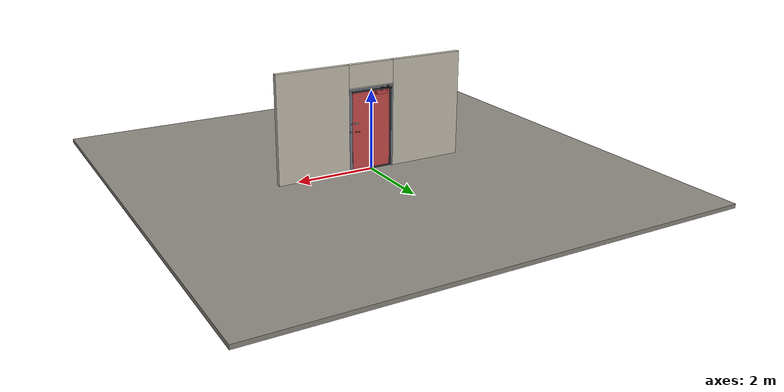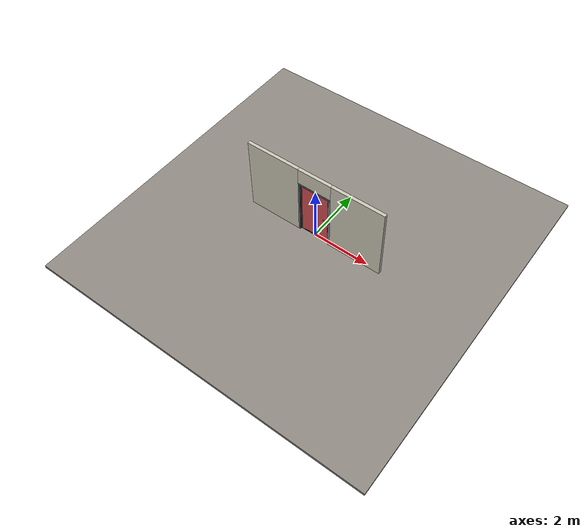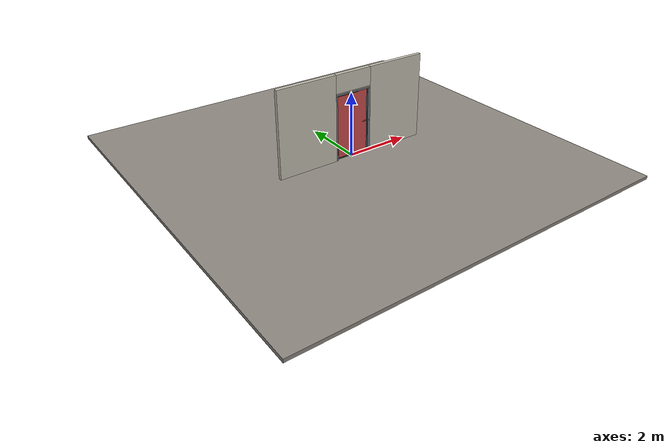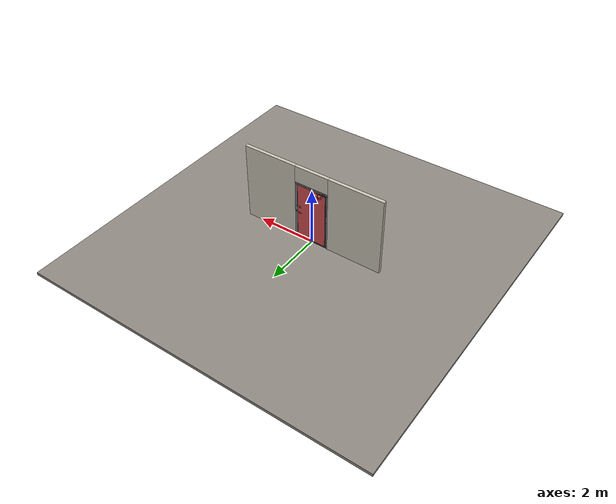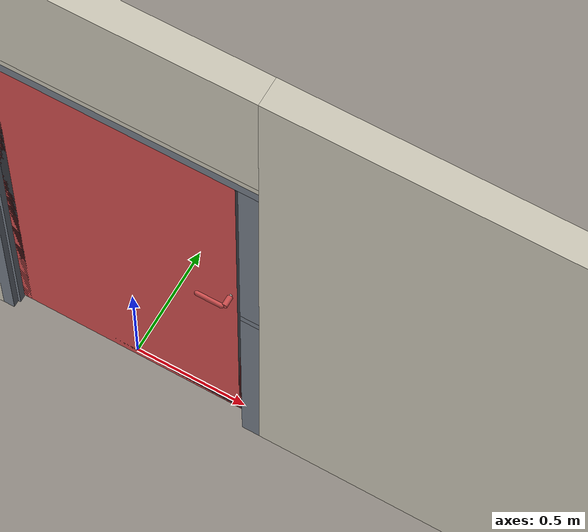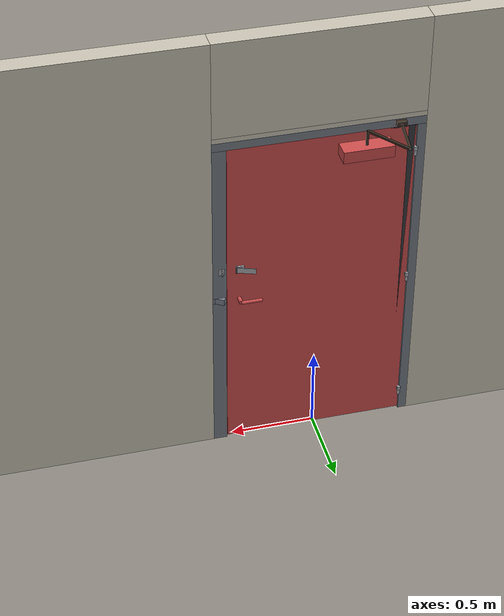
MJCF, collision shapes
<?xml version="1.0" ?>
<mujoco model="db0508_swing_single_full">
  <compiler angle="radian" meshdir="../../hardware" texturedir="../../textures" autolimits="true" inertiafromgeom="false"/>
  <option timestep="0.002" integrator="implicitfast" cone="elliptic" impratio="10" noslip_iterations="3">
    <flag multiccd="enable"/>
  </option>
  <size memory="16M"/>
  <default>
    <geom condim="4" solref="0.005 1" solimp="0.95 0.99 0.001"/>
    <joint solreflimit="0.005 1" solimplimit="0.95 0.99 0.001"/>
    <tendon solreflimit="0.005 1"/>
    <equality solref="0.002 1"/>
  </default>
  <visual>
    <headlight ambient="0.4 0.4 0.4" diffuse="0.7 0.7 0.7" specular="0.2 0.2 0.2"/>
    <quality shadowsize="4096"/>
    <map znear="0.01" zfar="60"/>
  </visual>
  <asset>
    <mesh name="closer_body_fdc4667657" file="closer_body_fdc4667657.obj"/>
    <mesh name="lever_9f02b544cf" file="lever_9f02b544cf.obj"/>
    <mesh name="strap_hinge_78d1bbb966" file="strap_hinge_78d1bbb966.obj"/>
    <material name="mat_floor" rgba="0.55 0.53 0.5 1" specular="0.2" shininess="0.15" reflectance="0"/>
    <material name="mat_wall" rgba="0.78 0.76 0.7 1" specular="0.2" shininess="0.1" reflectance="0"/>
    <material name="mat_leaf" rgba="0.2 0.21 0.23 1" specular="0.23" shininess="0.5" reflectance="0.02"/>
    <material name="mat_mesh_infill" rgba="0.6 0.62 0.64 0.55" specular="0.68" shininess="0.3" reflectance="0.1"/>
    <material name="mat_hinge" rgba="0.65 0.66 0.68 1" specular="0.74" shininess="0.5" reflectance="0.36"/>
    <material name="mat_op_nickel_satin" rgba="0.72 0.7 0.66 1" specular="0.8" shininess="0.65" reflectance="0.4"/>
    <material name="mat_trim" rgba="0.85 0.66 0.3 1" specular="0.8" shininess="0.75" reflectance="0.4"/>
    <material name="mat_bolt" rgba="0.85 0.66 0.3 1" specular="0.8" shininess="0.75" reflectance="0.4"/>
    <material name="mat_op_steel_galvanized" rgba="0.65 0.66 0.68 1" specular="0.74" shininess="0.5" reflectance="0.36"/>
    <material name="mat_padlock" rgba="0.85 0.66 0.3 1" specular="0.8" shininess="0.75" reflectance="0.4"/>
    <material name="mat_frame" rgba="0.45 0.48 0.52 1" specular="0.32" shininess="0.6" reflectance="0.08"/>
    <material name="mat_seal" rgba="0.1 0.1 0.1 1" specular="0.2" shininess="0.1" reflectance="0"/>
    <material name="mat_closer" rgba="0.22 0.17 0.13 1" specular="0.8" shininess="0.6" reflectance="0.4"/>
    <texture name="skybox" type="skybox" builtin="gradient" rgb1="0.6 0.7 0.85" rgb2="0.9 0.92 0.95" width="256" height="256"/>
  </asset>
  <worldbody>
    <light name="sun" pos="1.5 -2.5 4" dir="-0.3 0.5 -0.8" directional="true" diffuse="0.8 0.8 0.8" specular="0.3 0.3 0.3" castshadow="true"/>
    <light name="fill" pos="-1.5 2.5 3" dir="0.3 -0.5 -0.7" directional="true" diffuse="0.35 0.35 0.4" castshadow="false"/>
    <camera name="robot_view" pos="0 -2.570688 1.734312" xyaxes="1 0 0 0 0.26963 0.962964" fovy="52"/>
    <camera name="far_view" pos="0 2.513687 1.734312" xyaxes="-1 0 0 0 -0.26963 0.962964" fovy="52"/>
    <camera name="iso" pos="1.932062 -2.163938 2.141063" xyaxes="0.741536 0.670913 0 -0.242917 0.268487 0.932151" fovy="46"/>
    <camera name="detail_handle" pos="0.543 -0.877 1.32" xyaxes="0.97561 0.219512 0 -0.070934 0.315262 0.94635" fovy="38"/>
    <geom name="floor" type="box" size="6 6 0.05" pos="0 0 -0.05" material="mat_floor" group="0" contype="1" conaffinity="1" friction="0.8 0.005 0.0001" density="2400"/>
    <geom name="wall_left" type="box" size="0.9565 0.0575 1.35" pos="-1.5435 -0.0285 1.35" material="mat_wall" group="0" contype="1" conaffinity="1" friction="0.6 0.005 0.0001" density="800"/>
    <geom name="wall_right" type="box" size="0.9415 0.0575 1.35" pos="1.5585 -0.0285 1.35" material="mat_wall" group="0" contype="1" conaffinity="1" friction="0.6 0.005 0.0001" density="800"/>
    <geom name="wall_header" type="box" size="0.602 0.0575 0.2875" pos="0.015 -0.0285 2.4125" material="mat_wall" group="0" contype="1" conaffinity="1" friction="0.6 0.005 0.0001" density="800"/>
    <geom name="hinge_pintle_0" type="cylinder" size="0.008 0.02" pos="-0.534 0.029 0.133" material="mat_hinge" group="1" contype="0" conaffinity="0" density="7850"/>
    <geom name="hinge_pintle_1" type="cylinder" size="0.008 0.02" pos="-0.534 0.029 0.999" material="mat_hinge" group="1" contype="0" conaffinity="0" density="7850"/>
    <geom name="hinge_pintle_2" type="cylinder" size="0.008 0.02" pos="-0.534 0.029 1.865" material="mat_hinge" group="1" contype="0" conaffinity="0" density="7850"/>
    <geom name="leaf_staple_leg_n" type="box" size="0.003 0.0025 0.013" pos="0.565 0.042 1.2525" quat="0.707107 -0.707107 0 0" material="mat_op_steel_galvanized" group="0" contype="1" conaffinity="1" friction="0.6 0.005 0.0001" density="7800"/>
    <geom name="leaf_staple_leg_p" type="box" size="0.003 0.0025 0.013" pos="0.565 0.042 1.2275" quat="0.707107 -0.707107 0 0" material="mat_op_steel_galvanized" group="0" contype="1" conaffinity="1" friction="0.6 0.005 0.0001" density="7800"/>
    <geom name="leaf_staple_bridge" type="box" size="0.003 0.015 0.0025" pos="0.565 0.0525 1.24" quat="0.707107 -0.707107 0 0" material="mat_op_steel_galvanized" group="0" contype="1" conaffinity="1" friction="0.6 0.005 0.0001" density="7800"/>
    <geom name="leaf_staple_base" type="box" size="0.016 0.021 0.001" pos="0.565 0.03 1.24" quat="0.707107 -0.707107 0 0" material="mat_op_steel_galvanized" group="1" contype="0" conaffinity="0" density="7800"/>
    <geom name="jamb_hinge" type="box" size="0.025 0.0575 1.0225" pos="-0.562 -0.0285 1.0225" material="mat_frame" group="0" contype="1" conaffinity="1" friction="0.6 0.005 0.0001" density="300"/>
    <geom name="strike_1040_wall_n" type="box" size="0.04 0.03825 0.0183" pos="0.577 -0.04775 1.04" material="mat_frame" group="0" contype="1" conaffinity="1" friction="0.6 0.005 0.0001" density="300"/>
    <geom name="strike_1040_wall_p" type="box" size="0.04 0.008 0.0183" pos="0.577 0.0175 1.04" material="mat_frame" group="0" contype="1" conaffinity="1" friction="0.6 0.005 0.0001" density="300"/>
    <geom name="strike_1040_ramp" type="box" size="0.04 0.018028 0.0183" pos="0.580282 0.018312 1.04" quat="0.957092 0 0 -0.289784" material="mat_frame" group="0" contype="1" conaffinity="1" friction="0.12 0.005 0.0001" density="300"/>
    <geom name="strike_1040_back" type="box" size="0.0285 0.0095 0.0183" pos="0.5885 0 1.04" material="mat_frame" group="0" contype="1" conaffinity="1" friction="0.6 0.005 0.0001" density="300"/>
    <geom name="jamb_strike_0" type="box" size="0.04 0.0575 0.51085" pos="0.577 -0.0285 0.51085" material="mat_frame" group="0" contype="1" conaffinity="1" friction="0.6 0.005 0.0001" density="300"/>
    <geom name="jamb_strike_1" type="box" size="0.04 0.0575 0.49335" pos="0.577 -0.0285 1.55165" material="mat_frame" group="0" contype="1" conaffinity="1" friction="0.6 0.005 0.0001" density="300"/>
    <geom name="jamb_head" type="box" size="0.602 0.0575 0.025" pos="0.015 -0.0285 2.07" material="mat_frame" group="0" contype="1" conaffinity="1" friction="0.6 0.005 0.0001" density="300"/>
    <geom name="head_stud" type="box" size="0.602 0.0575 0.015" pos="0.015 -0.0285 2.11" material="mat_wall" group="0" contype="1" conaffinity="1" friction="0.6 0.005 0.0001" density="500"/>
    <geom name="stop_hinge" type="box" size="0.0055 0.016 1.0225" pos="-0.5315 -0.0385 1.0225" material="mat_frame" group="0" contype="1" conaffinity="1" friction="0.6 0.005 0.0001" density="300"/>
    <geom name="stop_strike" type="box" size="0.0055 0.016 1.0225" pos="0.5315 -0.0385 1.0225" material="mat_frame" group="0" contype="1" conaffinity="1" friction="0.6 0.005 0.0001" density="300"/>
    <geom name="stop_head" type="box" size="0.537 0.016 0.0055" pos="0 -0.0385 2.0395" material="mat_frame" group="0" contype="1" conaffinity="1" friction="0.6 0.005 0.0001" density="300"/>
    <geom name="seal_hinge" type="box" size="0.004 0.004 1.0225" pos="-0.534 -0.026 1.0225" material="mat_seal" group="1" contype="0" conaffinity="0" density="1100"/>
    <geom name="seal_strike" type="box" size="0.004 0.004 1.0225" pos="0.534 -0.026 1.0225" material="mat_seal" group="1" contype="0" conaffinity="0" density="1100"/>
    <geom name="seal_head" type="box" size="0.517 0.004 0.008" pos="0 -0.026 2.033" material="mat_seal" group="1" contype="0" conaffinity="0" density="1100"/>
    <geom name="closer_bracket" type="box" size="0.03 0.012 0.014" pos="-0.437 0.041 2.075" material="mat_closer" group="1" contype="0" conaffinity="0" density="2700"/>
    <geom name="hinge_pintle_0_strap_0" type="box" size="0.0064 0.022 0.016" pos="-0.534 -0.0005 0.133" material="mat_hinge" group="1" contype="0" conaffinity="0" density="7850"/>
    <geom name="hinge_pintle_1_strap_0" type="box" size="0.0064 0.022 0.016" pos="-0.534 -0.0005 0.999" material="mat_hinge" group="1" contype="0" conaffinity="0" density="7850"/>
    <geom name="hinge_pintle_2_strap_0" type="box" size="0.0064 0.022 0.016" pos="-0.534 -0.0005 1.865" material="mat_hinge" group="1" contype="0" conaffinity="0" density="7850"/>
    <site name="approach_point" pos="0 -1.5 0" quat="1 0 0 0" size="0.05" rgba="0.2 0.9 0.2 0.5" group="4"/>
    <site name="goal_point" pos="0 1.5 0" quat="1 0 0 0" size="0.05" rgba="0.2 0.9 0.2 0.5" group="4"/>
    <site name="door_plane_center" pos="0 0 1.0225" quat="1 0 0 0" size="0.02" rgba="0.2 0.9 0.2 0.5" group="4"/>
    <body name="leaf" pos="-0.537 0 0">
      <inertial pos="0.483369 0.013285 1.184546" mass="73.553846" quat="0.522068 0.521364 0.466457 -0.487896" diaginertia="6.436992332 30.560620639 36.886651204"/>
      <joint name="leaf_hinge" type="hinge" axis="0 0 1" pos="0.003 0.029 0" limited="true" range="0 1.745329" solreflimit="0.02 1" damping="12.475663" frictionloss="24.00164" stiffness="13.356283" springref="-2.374912" armature="0.02"/>
      <geom name="leaf_slab_col" type="box" size="0.5335 0.022 1.016" pos="0.5365 0 1.025" material="mat_leaf" group="3" contype="1" conaffinity="1" rgba="0.8 0.3 0.3 0.25" friction="0.4 0.005 0.0001" density="1"/>
      <geom name="leaf_rail_b" type="box" size="0.5335 0.022 0.0225" pos="0.5365 0 0.0315" material="mat_leaf" group="1" contype="0" conaffinity="0" density="1"/>
      <geom name="leaf_rail_t" type="box" size="0.5335 0.022 0.0225" pos="0.5365 0 2.0185" material="mat_leaf" group="1" contype="0" conaffinity="0" density="1"/>
      <geom name="leaf_stile_h" type="box" size="0.0225 0.022 1.016" pos="0.0255 0 1.025" material="mat_leaf" group="1" contype="0" conaffinity="0" density="1"/>
      <geom name="leaf_stile_l" type="box" size="0.0225 0.022 1.016" pos="1.0475 0 1.025" material="mat_leaf" group="1" contype="0" conaffinity="0" density="1"/>
      <geom name="leaf_mesh" type="box" size="0.4885 0.0015 0.971" pos="0.5365 0 1.025" material="mat_mesh_infill" group="1" contype="0" conaffinity="0" density="1"/>
      <geom name="hinge_strap_0" type="mesh" mesh="strap_hinge_78d1bbb966" pos="0.003 0.025 0.159" material="mat_hinge" group="1" contype="0" conaffinity="0" density="7850"/>
      <geom name="hinge_strap_eye_0" type="cylinder" size="0.011 0.012" pos="0.003 0.029 0.159" material="mat_hinge" group="1" contype="0" conaffinity="0" density="7850"/>
      <geom name="hinge_strap_neck_0" type="box" size="0.012 0.006 0.006" pos="0.003 0.027 0.159" material="mat_hinge" group="1" contype="0" conaffinity="0" density="7850"/>
      <geom name="hinge_strap_1" type="mesh" mesh="strap_hinge_78d1bbb966" pos="0.003 0.025 1.025" material="mat_hinge" group="1" contype="0" conaffinity="0" density="7850"/>
      <geom name="hinge_strap_eye_1" type="cylinder" size="0.011 0.012" pos="0.003 0.029 1.025" material="mat_hinge" group="1" contype="0" conaffinity="0" density="7850"/>
      <geom name="hinge_strap_neck_1" type="box" size="0.012 0.006 0.006" pos="0.003 0.027 1.025" material="mat_hinge" group="1" contype="0" conaffinity="0" density="7850"/>
      <geom name="hinge_strap_2" type="mesh" mesh="strap_hinge_78d1bbb966" pos="0.003 0.025 1.891" material="mat_hinge" group="1" contype="0" conaffinity="0" density="7850"/>
      <geom name="hinge_strap_eye_2" type="cylinder" size="0.011 0.012" pos="0.003 0.029 1.891" material="mat_hinge" group="1" contype="0" conaffinity="0" density="7850"/>
      <geom name="hinge_strap_neck_2" type="box" size="0.012 0.006 0.006" pos="0.003 0.027 1.891" material="mat_hinge" group="1" contype="0" conaffinity="0" density="7850"/>
      <geom name="leaf_latch_bolt_faceplate" type="box" size="0.0006 0.014 0.0283" pos="1.0694 0 1.04" material="mat_bolt" group="1" contype="0" conaffinity="0" density="8500"/>
      <geom name="leaf_hasp_plate" type="box" size="0.024 0.0215 0.0055" pos="0.995 0.0275 1.24" quat="0.707107 -0.707107 0 0" material="mat_op_steel_galvanized" group="1" contype="0" conaffinity="0" density="7800"/>
      <geom name="closer_body" type="mesh" mesh="closer_body_fdc4667657" pos="0.3 0.022 1.952" quat="-0.707107 0.707107 0 0" material="mat_closer" group="1" contype="0" conaffinity="0" density="2000"/>
      <geom name="closer_body_col" type="box" size="0.145 0.05 0.035" pos="0.3 0.072 1.952" material="mat_closer" group="3" contype="1" conaffinity="1" rgba="0.8 0.3 0.3 0.25" friction="0.6 0.005 0.0001" density="2000"/>
      <geom name="closer_pinion_shaft" type="cylinder" size="0.008 0.0615" pos="0.3 0.072 2.0135" material="mat_closer" group="1" contype="0" conaffinity="0" density="2700"/>
      <site name="leaf_edge_mid" pos="1.07 0 1.016" quat="1 0 0 0" size="0.02" rgba="0.2 0.9 0.2 0.5" group="4"/>
      <body name="leaf_handle" pos="1 0 1.04">
        <inertial pos="-0.028544 0 0" mass="0.978187" quat="0 0.707107 0.707107 0" diaginertia="0.001772047 0.003604455 0.005198299"/>
        <joint name="leaf_handle_hinge" type="hinge" axis="0 -1 0" limited="true" range="0 0.96" damping="0.245624" frictionloss="0.048" stiffness="1.2" springref="-0.458333" armature="0.01"/>
        <geom name="leaf_handle_spindle" type="cylinder" size="0.006 0.03" pos="0 0 0" quat="0.707107 -0.707107 0 0" material="mat_op_nickel_satin" group="1" contype="0" conaffinity="0" density="7850"/>
        <geom name="leaf_handle_lever_n" type="mesh" mesh="lever_9f02b544cf" pos="0 -0.022 0" quat="0.707107 0.707107 0 0" material="mat_op_nickel_satin" group="1" contype="0" conaffinity="0" density="3000"/>
        <geom name="leaf_handle_lever_col_n" type="capsule" size="0.0095 0.053" pos="-0.0625 -0.077 0" quat="0.707107 0 -0.707107 0" material="mat_op_nickel_satin" group="3" contype="1" conaffinity="1" rgba="0.8 0.3 0.3 0.25" friction="0.7 0.01 0.0001" density="3000"/>
        <geom name="leaf_handle_hub_col_n" type="cylinder" size="0.012 0.022" pos="0 -0.052 0" quat="0.707107 -0.707107 0 0" material="mat_op_nickel_satin" group="3" contype="1" conaffinity="1" rgba="0.8 0.3 0.3 0.25" friction="0.6 0.005 0.0001" density="3000"/>
        <geom name="leaf_handle_lever_p" type="mesh" mesh="lever_9f02b544cf" pos="0 0.022 0" quat="-0.707107 0.707107 0 0" material="mat_op_nickel_satin" group="1" contype="0" conaffinity="0" density="3000"/>
        <geom name="leaf_handle_lever_col_p" type="capsule" size="0.0095 0.053" pos="-0.0625 0.077 0" quat="0.707107 0 -0.707107 0" material="mat_op_nickel_satin" group="3" contype="1" conaffinity="1" rgba="0.8 0.3 0.3 0.25" friction="0.7 0.01 0.0001" density="3000"/>
        <geom name="leaf_handle_hub_col_p" type="cylinder" size="0.012 0.022" pos="0 0.052 0" quat="0.707107 -0.707107 0 0" material="mat_op_nickel_satin" group="3" contype="1" conaffinity="1" rgba="0.8 0.3 0.3 0.25" friction="0.6 0.005 0.0001" density="3000"/>
        <site name="leaf_handle_grip_n" pos="-0.1 -0.077 0" quat="1 0 0 0" size="0.012" rgba="0.2 0.9 0.2 0.5" group="4"/>
        <site name="leaf_handle_grip_p" pos="-0.1 0.077 0" quat="1 0 0 0" size="0.012" rgba="0.2 0.9 0.2 0.5" group="4"/>
      </body>
      <body name="leaf_latch_bolt" pos="1.07 0 1.04">
        <inertial pos="-0.0055 0 0" mass="0.074627" quat="0.92388 -0.382683 0 0" diaginertia="0.000002271 0.000013255 0.000013255"/>
        <joint name="leaf_latch_bolt_slide" type="slide" axis="-1 0 0" limited="true" range="0 0.019" damping="2" frictionloss="0.3" stiffness="600" springref="-0.01" armature="0.1"/>
        <geom name="leaf_latch_bolt_capsule" type="capsule" size="0.008 0.0165" pos="-0.0055 0 0" quat="0.707107 0 0.707107 0" material="mat_bolt" group="0" contype="1" conaffinity="1" friction="0.2 0.005 0.0001" density="8500"/>
      </body>
      <body name="leaf_hasp" pos="1.015 0.033 1.24">
        <inertial pos="-0.042059 0.012847 0" mass="0.110745" quat="0.695779 -0.695779 0.126064 -0.126064" diaginertia="0.000012666 0.000140194 0.000152371"/>
        <joint name="leaf_hasp_hinge" type="hinge" axis="0 0 1" limited="true" range="0 2.9" damping="0.02" frictionloss="0.05" armature="0.005" ref="2.8"/>
        <geom name="leaf_hasp_strap" type="box" size="0.0545 0.0175 0.0015" pos="-0.051854 0.016844 0" quat="0.120185 -0.120185 -0.696818 0.696818" material="mat_op_steel_galvanized" group="0" contype="1" conaffinity="1" friction="0.6 0.005 0.0001" density="7800"/>
        <geom name="leaf_hasp_knuckle" type="cylinder" size="0.0045 0.0215" pos="-0.00134 -0.003769 0" quat="0.169967 0 0 0.98545" material="mat_op_steel_galvanized" group="1" contype="0" conaffinity="0" density="7850"/>
        <site name="leaf_hasp_grip" pos="-0.087208 0.020392 0" quat="0.169967 0 0 0.98545" size="0.01" rgba="0.2 0.9 0.2 0.5" group="4"/>
      </body>
      <body name="closer_arm_main" pos="0.3 0.072 2.075" quat="0.454107 0 0 0.890947">
        <inertial pos="0.14 0 0" mass="0.12096" quat="1 0 0 0" diaginertia="0.000003588 0.00079128 0.000792852"/>
        <joint name="closer_pinion" type="hinge" axis="0 0 1" limited="false" damping="0.01" armature="0.002"/>
        <geom name="closer_arm_main_geom" type="box" size="0.14 0.008 0.005" pos="0.14 0 0" material="mat_closer" group="1" contype="0" conaffinity="0" density="2700"/>
        <body name="closer_arm_fore" pos="0.28 0 0" quat="-0.373215 0 0 -0.927745">
          <inertial pos="0.128088 0 0" mass="0.076531" quat="1 0 0 0" diaginertia="0.000001771 0.000437665 0.000438201"/>
          <joint name="closer_elbow" type="hinge" axis="0 0 1" limited="false" damping="0.01" armature="0.002"/>
          <geom name="closer_arm_fore_geom" type="box" size="0.1125 0.007 0.004" pos="0.1125 0 0" material="mat_closer" group="1" contype="0" conaffinity="0" density="2700"/>
          <geom name="closer_fore_neck" type="box" size="0.0175 0.003 0.003" pos="0.2425 0 0" material="mat_closer" group="1" contype="0" conaffinity="0" density="2700"/>
          <geom name="closer_fore_pivot" type="cylinder" size="0.005 0.012" pos="0.26 0 0" material="mat_closer" group="1" contype="0" conaffinity="0" density="2700"/>
        </body>
      </body>
    </body>
  </worldbody>
  <tendon>
    <fixed name="leaf_latch_bolt_coupling" limited="true" range="0 10">
      <joint joint="leaf_latch_bolt_slide" coef="1"/>
      <joint joint="leaf_handle_hinge" coef="-0.020879"/>
    </fixed>
  </tendon>
  <equality>
    <connect name="closer_arm_connect" body1="closer_arm_fore" body2="world" anchor="0.26 0 0" active="true"/>
  </equality>
  <contact>
    <exclude body1="closer_arm_main" body2="leaf"/>
    <exclude body1="closer_arm_fore" body2="leaf"/>
    <exclude body1="closer_arm_main" body2="closer_arm_fore"/>
  </contact>
  <sensor>
    <jointpos name="leaf_hinge_pos" joint="leaf_hinge"/>
    <jointvel name="leaf_hinge_vel" joint="leaf_hinge"/>
    <jointpos name="leaf_handle_hinge_pos" joint="leaf_handle_hinge"/>
    <jointvel name="leaf_handle_hinge_vel" joint="leaf_handle_hinge"/>
    <jointpos name="leaf_latch_bolt_slide_pos" joint="leaf_latch_bolt_slide"/>
    <jointvel name="leaf_latch_bolt_slide_vel" joint="leaf_latch_bolt_slide"/>
    <jointpos name="leaf_hasp_hinge_pos" joint="leaf_hasp_hinge"/>
    <jointvel name="leaf_hasp_hinge_vel" joint="leaf_hasp_hinge"/>
  </sensor>
</mujoco>
